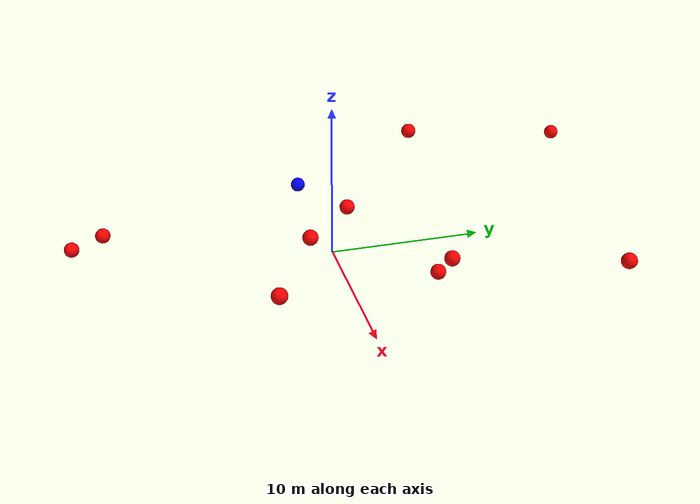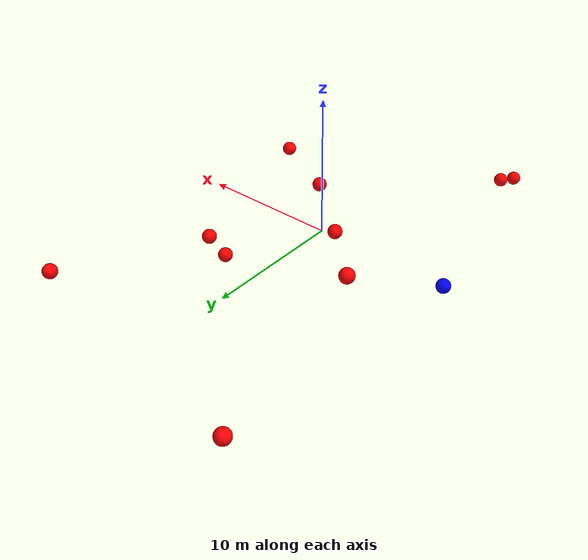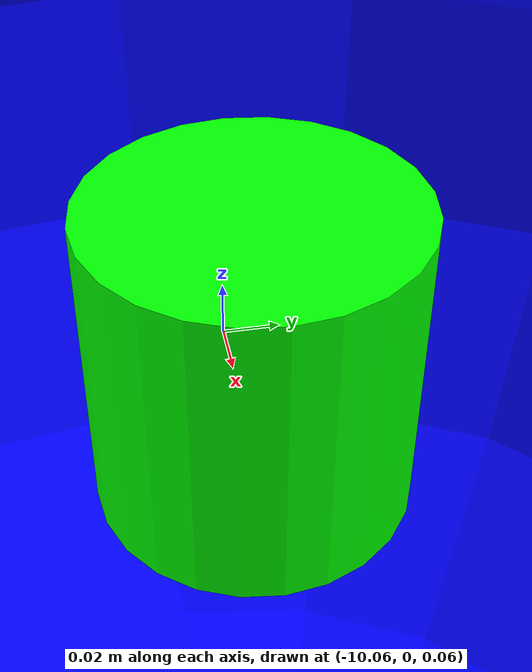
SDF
<?xml version="1.0" ?>
<sdf version="1.8">
    <world name="3d_world">
        <physics name="1ms" type="ode">
            <max_step_size>0.001</max_step_size>
            <real_time_factor>1.0</real_time_factor>
            <real_time_update_rate>1000.0</real_time_update_rate>
        </physics>
        <gravity>0 0 0</gravity>

        <plugin
            filename="gz-sim-physics-system"
            name="gz::sim::v8::systems::Physics">
        </plugin>
        <plugin
            filename="libignition-gazebo-user-commands-system.so"
            name="ignition::gazebo::systems::UserCommands">
        </plugin>
        <plugin
            filename="gz-sim-scene-broadcaster-system"
            name="gz::sim::systems::SceneBroadcaster">
        </plugin>
        <plugin
            filename="gz-sim-sensors-system"
            name="gz::sim::systems::Sensors">
            <render_engine>ogre2</render_engine>
        </plugin>

        <light type="directional" name="sun">
            <cast_shadows>true</cast_shadows>
            <pose>0 0 10 0 0 0</pose>
            <diffuse>0.8 0.8 0.8 1</diffuse>
            <specular>0.2 0.2 0.2 1</specular>
            <attenuation>
                <range>1000</range>
                <constant>0.9</constant>
                <linear>0.01</linear>
                <quadratic>0.001</quadratic>
            </attenuation>
            <direction>-0.5 0.1 -0.9</direction>
        </light>

        <!-- AGENTE -->
        <model name='agente' canonical_link='chassis'>
            <pose relative_to='world'>-10.0 0 0.0 0 0 0</pose>
            <link name='chassis'>
                <pose relative_to='__model__'>0.0 0 0.0 0 0 0</pose>
                <inertial>
                    <mass>1.14395</mass>
                    <inertia>
                        <ixx>0.095329</ixx>
                        <ixy>0</ixy>
                        <ixz>0</ixz>
                        <iyy>0.381317</iyy>
                        <iyz>0</iyz>
                        <izz>0.476646</izz>
                    </inertia>
                </inertial>
                <visual name='visual'>
                    <geometry>
                        <sphere>
                            <radius>0.5</radius>
                        </sphere>
                    </geometry>
                    <material>
                        <ambient>0.0 0.0 1.0 1</ambient>
                        <diffuse>0.0 0.0 1.0 1</diffuse>
                        <specular>0.0 0.0 1.0 1</specular>
                    </material>
                </visual>
                <collision name='collision'>
                    <geometry>
                        <sphere>
                            <radius>0.5</radius>
                        </sphere>
                    </geometry>
                </collision>
                <enable_gravity>false</enable_gravity>
            </link>

            <link name='lidar_link'>
                <pose relative_to='chassis'>0.0 0 0.1 0 0 0</pose>
                <inertial>
                    <mass>0.1</mass>
                    <inertia>
                        <ixx>0.000166667</ixx>
                        <iyy>0.000166667</iyy>
                        <izz>0.000166667</izz>
                    </inertia>
                </inertial>
                <collision name='collision'>
                    <geometry>
                        <cylinder>
                            <radius>0.05</radius>
                            <length>0.1</length>
                        </cylinder>
                    </geometry>
                </collision>
                <visual name='visual'>
                    <geometry>
                        <cylinder>
                            <radius>0.05</radius>
                            <length>0.1</length>
                        </cylinder>
                    </geometry>
                    <material>
                        <ambient>0.0 1.0 0.0 1</ambient>
                        <diffuse>0.0 1.0 0.0 1</diffuse>
                        <specular>0.0 1.0 0.0 1</specular>
                    </material>
                </visual>
                <sensor name="lidar" type="gpu_lidar">
                    <topic>scan</topic>
                    <update_rate>10</update_rate>
                    <lidar>
                        <scan>
                            <horizontal>
                                <samples>5000</samples>
                                <resolution>1</resolution>
                                <min_angle>-3.14159</min_angle>
                                <max_angle>3.14159</max_angle>
                            </horizontal>
                        </scan>
                        <range>
                            <min>0.1</min>
                            <max>10.0</max>
                            <resolution>0.01</resolution>
                        </range>
                    </lidar>
                    <visualize>true</visualize>
                    <always_on>true</always_on>
                    <update_rate>10</update_rate>
                    <pose_frame>lidar</pose_frame>
                </sensor>
                <enable_gravity>false</enable_gravity>
            </link>

            <joint name="lidar_joint" type="fixed">
                <parent>chassis</parent>
                <child>lidar_link</child>
            </joint>

            <plugin
                filename="ignition-gazebo-joint-state-publisher-system"
                name="ignition::gazebo::systems::JointStatePublisher">
            </plugin>
            <plugin
                filename="ignition-gazebo-odometry-publisher-system"
                name="ignition::gazebo::systems::OdometryPublisher">
                <dimensions>3</dimensions>
            </plugin>
            <plugin
                filename="ignition-gazebo-velocity-control-system"
                name="ignition::gazebo::systems::VelocityControl">
                <initial_linear>0.0 0 0</initial_linear>
                <initial_angular>0 0 0.0</initial_angular>
            </plugin>
            <plugin
                filename="libignition-gazebo-pose-publisher-system.so"
                name="ignition::gazebo::systems::PosePublisher">
                <topic>/agente/pose</topic>
                <frame_id>agente</frame_id>
                <update_rate>30</update_rate>
            </plugin>
        </model>

        <!-- OBSTACLE 1 -->
        <model name='obstacle_1' canonical_link='obstacle'>
            <static>false</static>
            <pose relative_to='world'>1.70 -1.83 2.29 0 0 0</pose>
            <link name='obstacle'>
                <pose relative_to='__model__'>0.0 0 0.0 0 0 0</pose>
                <visual name='visual'>
                    <geometry>
                        <sphere>
                            <radius>0.50</radius>
                        </sphere>
                    </geometry>
                    <material>
                        <ambient>1.0 0.0 0.0 1</ambient>
                        <diffuse>1.0 0.0 0.0 1</diffuse>
                        <specular>1.0 0.0 0.0 1</specular>
                    </material>
                </visual>
                <collision name='collision'>
                    <geometry>
                        <sphere>
                            <radius>0.50</radius>
                        </sphere>
                    </geometry>
                </collision>
                <enable_gravity>false</enable_gravity>
            </link>

            <plugin
                filename="ignition-gazebo-velocity-control-system"
                name="ignition::gazebo::systems::VelocityControl">
                <initial_linear>-0.06 0.40 -0.50</initial_linear>
                <initial_angular>0 0 0</initial_angular>
            </plugin>

            <plugin
                filename="ignition-gazebo-odometry-publisher-system"
                name="ignition::gazebo::systems::OdometryPublisher">
                <dimensions>3</dimensions>
            </plugin>
        </model>

        <!-- OBSTACLE 2 -->
        <model name='obstacle_2' canonical_link='obstacle'>
            <static>false</static>
            <pose relative_to='world'>8.52 16.39 1.79 0 0 0</pose>
            <link name='obstacle'>
                <pose relative_to='__model__'>0.0 0 0.0 0 0 0</pose>
                <visual name='visual'>
                    <geometry>
                        <sphere>
                            <radius>0.50</radius>
                        </sphere>
                    </geometry>
                    <material>
                        <ambient>1.0 0.0 0.0 1</ambient>
                        <diffuse>1.0 0.0 0.0 1</diffuse>
                        <specular>1.0 0.0 0.0 1</specular>
                    </material>
                </visual>
                <collision name='collision'>
                    <geometry>
                        <sphere>
                            <radius>0.50</radius>
                        </sphere>
                    </geometry>
                </collision>
                <enable_gravity>false</enable_gravity>
            </link>

            <plugin
                filename="ignition-gazebo-velocity-control-system"
                name="ignition::gazebo::systems::VelocityControl">
                <initial_linear>-0.35 -1.96 -0.21</initial_linear>
                <initial_angular>0 0 0</initial_angular>
            </plugin>

            <plugin
                filename="ignition-gazebo-odometry-publisher-system"
                name="ignition::gazebo::systems::OdometryPublisher">
                <dimensions>3</dimensions>
            </plugin>
        </model>

        <!-- OBSTACLE 3 -->
        <model name='obstacle_3' canonical_link='obstacle'>
            <static>false</static>
            <pose relative_to='world'>-8.00 7.69 4.27 0 0 0</pose>
            <link name='obstacle'>
                <pose relative_to='__model__'>0.0 0 0.0 0 0 0</pose>
                <visual name='visual'>
                    <geometry>
                        <sphere>
                            <radius>0.50</radius>
                        </sphere>
                    </geometry>
                    <material>
                        <ambient>1.0 0.0 0.0 1</ambient>
                        <diffuse>1.0 0.0 0.0 1</diffuse>
                        <specular>1.0 0.0 0.0 1</specular>
                    </material>
                </visual>
                <collision name='collision'>
                    <geometry>
                        <sphere>
                            <radius>0.50</radius>
                        </sphere>
                    </geometry>
                </collision>
                <enable_gravity>false</enable_gravity>
            </link>

            <plugin
                filename="ignition-gazebo-velocity-control-system"
                name="ignition::gazebo::systems::VelocityControl">
                <initial_linear>1.63 -1.01 -0.56</initial_linear>
                <initial_angular>0 0 0</initial_angular>
            </plugin>

            <plugin
                filename="ignition-gazebo-odometry-publisher-system"
                name="ignition::gazebo::systems::OdometryPublisher">
                <dimensions>3</dimensions>
            </plugin>
        </model>

        <!-- OBSTACLE 4 -->
        <model name='obstacle_4' canonical_link='obstacle'>
            <static>false</static>
            <pose relative_to='world'>4.40 6.58 1.07 0 0 0</pose>
            <link name='obstacle'>
                <pose relative_to='__model__'>0.0 0 0.0 0 0 0</pose>
                <visual name='visual'>
                    <geometry>
                        <sphere>
                            <radius>0.50</radius>
                        </sphere>
                    </geometry>
                    <material>
                        <ambient>1.0 0.0 0.0 1</ambient>
                        <diffuse>1.0 0.0 0.0 1</diffuse>
                        <specular>1.0 0.0 0.0 1</specular>
                    </material>
                </visual>
                <collision name='collision'>
                    <geometry>
                        <sphere>
                            <radius>0.50</radius>
                        </sphere>
                    </geometry>
                </collision>
                <enable_gravity>false</enable_gravity>
            </link>

            <plugin
                filename="ignition-gazebo-velocity-control-system"
                name="ignition::gazebo::systems::VelocityControl">
                <initial_linear>-0.75 -1.49 -0.24</initial_linear>
                <initial_angular>0 0 0</initial_angular>
            </plugin>

            <plugin
                filename="ignition-gazebo-odometry-publisher-system"
                name="ignition::gazebo::systems::OdometryPublisher">
                <dimensions>3</dimensions>
            </plugin>
        </model>

        <!-- OBSTACLE 5 -->
        <model name='obstacle_5' canonical_link='obstacle'>
            <static>false</static>
            <pose relative_to='world'>-2.44 1.66 1.83 0 0 0</pose>
            <link name='obstacle'>
                <pose relative_to='__model__'>0.0 0 0.0 0 0 0</pose>
                <visual name='visual'>
                    <geometry>
                        <sphere>
                            <radius>0.50</radius>
                        </sphere>
                    </geometry>
                    <material>
                        <ambient>1.0 0.0 0.0 1</ambient>
                        <diffuse>1.0 0.0 0.0 1</diffuse>
                        <specular>1.0 0.0 0.0 1</specular>
                    </material>
                </visual>
                <collision name='collision'>
                    <geometry>
                        <sphere>
                            <radius>0.50</radius>
                        </sphere>
                    </geometry>
                </collision>
                <enable_gravity>false</enable_gravity>
            </link>

            <plugin
                filename="ignition-gazebo-velocity-control-system"
                name="ignition::gazebo::systems::VelocityControl">
                <initial_linear>1.36 -0.25 -0.28</initial_linear>
                <initial_angular>0 0 0</initial_angular>
            </plugin>

            <plugin
                filename="ignition-gazebo-odometry-publisher-system"
                name="ignition::gazebo::systems::OdometryPublisher">
                <dimensions>3</dimensions>
            </plugin>
        </model>

        <!-- OBSTACLE 6 -->
        <model name='obstacle_6' canonical_link='obstacle'>
            <static>false</static>
            <pose relative_to='world'>-6.07 -14.26 -0.07 0 0 0</pose>
            <link name='obstacle'>
                <pose relative_to='__model__'>0.0 0 0.0 0 0 0</pose>
                <visual name='visual'>
                    <geometry>
                        <sphere>
                            <radius>0.50</radius>
                        </sphere>
                    </geometry>
                    <material>
                        <ambient>1.0 0.0 0.0 1</ambient>
                        <diffuse>1.0 0.0 0.0 1</diffuse>
                        <specular>1.0 0.0 0.0 1</specular>
                    </material>
                </visual>
                <collision name='collision'>
                    <geometry>
                        <sphere>
                            <radius>0.50</radius>
                        </sphere>
                    </geometry>
                </collision>
                <enable_gravity>false</enable_gravity>
            </link>

            <plugin
                filename="ignition-gazebo-velocity-control-system"
                name="ignition::gazebo::systems::VelocityControl">
                <initial_linear>1.03 1.72 0.01</initial_linear>
                <initial_angular>0 0 0</initial_angular>
            </plugin>

            <plugin
                filename="ignition-gazebo-odometry-publisher-system"
                name="ignition::gazebo::systems::OdometryPublisher">
                <dimensions>3</dimensions>
            </plugin>
        </model>

        <!-- OBSTACLE 7 -->
        <model name='obstacle_7' canonical_link='obstacle'>
            <static>false</static>
            <pose relative_to='world'>-9.64 19.73 2.13 0 0 0</pose>
            <link name='obstacle'>
                <pose relative_to='__model__'>0.0 0 0.0 0 0 0</pose>
                <visual name='visual'>
                    <geometry>
                        <sphere>
                            <radius>0.50</radius>
                        </sphere>
                    </geometry>
                    <material>
                        <ambient>1.0 0.0 0.0 1</ambient>
                        <diffuse>1.0 0.0 0.0 1</diffuse>
                        <specular>1.0 0.0 0.0 1</specular>
                    </material>
                </visual>
                <collision name='collision'>
                    <geometry>
                        <sphere>
                            <radius>0.50</radius>
                        </sphere>
                    </geometry>
                </collision>
                <enable_gravity>false</enable_gravity>
            </link>

            <plugin
                filename="ignition-gazebo-velocity-control-system"
                name="ignition::gazebo::systems::VelocityControl">
                <initial_linear>0.54 -1.92 -0.21</initial_linear>
                <initial_angular>0 0 0</initial_angular>
            </plugin>

            <plugin
                filename="ignition-gazebo-odometry-publisher-system"
                name="ignition::gazebo::systems::OdometryPublisher">
                <dimensions>3</dimensions>
            </plugin>
        </model>

        <!-- OBSTACLE 8 -->
        <model name='obstacle_8' canonical_link='obstacle'>
            <static>false</static>
            <pose relative_to='world'>-6.11 -16.39 -0.87 0 0 0</pose>
            <link name='obstacle'>
                <pose relative_to='__model__'>0.0 0 0.0 0 0 0</pose>
                <visual name='visual'>
                    <geometry>
                        <sphere>
                            <radius>0.50</radius>
                        </sphere>
                    </geometry>
                    <material>
                        <ambient>1.0 0.0 0.0 1</ambient>
                        <diffuse>1.0 0.0 0.0 1</diffuse>
                        <specular>1.0 0.0 0.0 1</specular>
                    </material>
                </visual>
                <collision name='collision'>
                    <geometry>
                        <sphere>
                            <radius>0.50</radius>
                        </sphere>
                    </geometry>
                </collision>
                <enable_gravity>false</enable_gravity>
            </link>

            <plugin
                filename="ignition-gazebo-velocity-control-system"
                name="ignition::gazebo::systems::VelocityControl">
                <initial_linear>1.13 1.65 0.09</initial_linear>
                <initial_angular>0 0 0</initial_angular>
            </plugin>

            <plugin
                filename="ignition-gazebo-odometry-publisher-system"
                name="ignition::gazebo::systems::OdometryPublisher">
                <dimensions>3</dimensions>
            </plugin>
        </model>

        <!-- OBSTACLE 9 -->
        <model name='obstacle_9' canonical_link='obstacle'>
            <static>false</static>
            <pose relative_to='world'>3.53 6.04 -0.34 0 0 0</pose>
            <link name='obstacle'>
                <pose relative_to='__model__'>0.0 0 0.0 0 0 0</pose>
                <visual name='visual'>
                    <geometry>
                        <sphere>
                            <radius>0.50</radius>
                        </sphere>
                    </geometry>
                    <material>
                        <ambient>1.0 0.0 0.0 1</ambient>
                        <diffuse>1.0 0.0 0.0 1</diffuse>
                        <specular>1.0 0.0 0.0 1</specular>
                    </material>
                </visual>
                <collision name='collision'>
                    <geometry>
                        <sphere>
                            <radius>0.50</radius>
                        </sphere>
                    </geometry>
                </collision>
                <enable_gravity>false</enable_gravity>
            </link>

            <plugin
                filename="ignition-gazebo-velocity-control-system"
                name="ignition::gazebo::systems::VelocityControl">
                <initial_linear>-1.26 -1.55 0.09</initial_linear>
                <initial_angular>0 0 0</initial_angular>
            </plugin>

            <plugin
                filename="ignition-gazebo-odometry-publisher-system"
                name="ignition::gazebo::systems::OdometryPublisher">
                <dimensions>3</dimensions>
            </plugin>
        </model>

        <!-- OBSTACLE 10 -->
        <model name='obstacle_10' canonical_link='obstacle'>
            <static>false</static>
            <pose relative_to='world'>7.18 -4.96 1.96 0 0 0</pose>
            <link name='obstacle'>
                <pose relative_to='__model__'>0.0 0 0.0 0 0 0</pose>
                <visual name='visual'>
                    <geometry>
                        <sphere>
                            <radius>0.50</radius>
                        </sphere>
                    </geometry>
                    <material>
                        <ambient>1.0 0.0 0.0 1</ambient>
                        <diffuse>1.0 0.0 0.0 1</diffuse>
                        <specular>1.0 0.0 0.0 1</specular>
                    </material>
                </visual>
                <collision name='collision'>
                    <geometry>
                        <sphere>
                            <radius>0.50</radius>
                        </sphere>
                    </geometry>
                </collision>
                <enable_gravity>false</enable_gravity>
            </link>

            <plugin
                filename="ignition-gazebo-velocity-control-system"
                name="ignition::gazebo::systems::VelocityControl">
                <initial_linear>-1.83 0.75 -0.30</initial_linear>
                <initial_angular>0 0 0</initial_angular>
            </plugin>

            <plugin
                filename="ignition-gazebo-odometry-publisher-system"
                name="ignition::gazebo::systems::OdometryPublisher">
                <dimensions>3</dimensions>
            </plugin>
        </model>

    </world>
</sdf>
